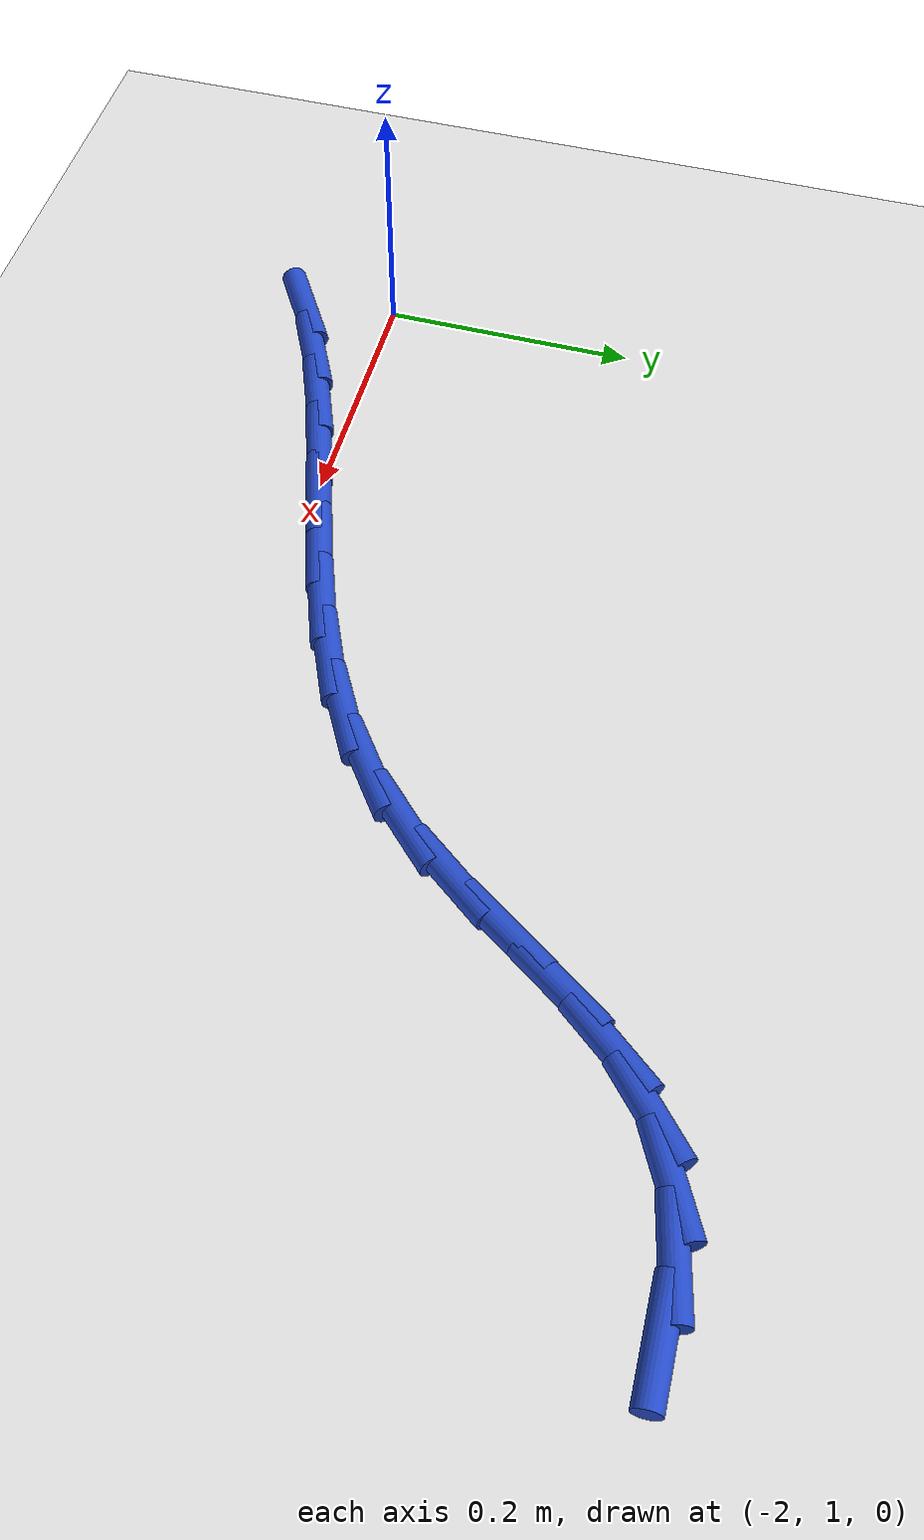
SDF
<sdf version="1.6">
 <world name="default">
  <model name="ground_plane">
   <static>1</static>
   <link name="link">
    <collision name="collision">
     <geometry><plane><normal>0 0 1</normal><size>100 100</size></plane></geometry>
     <surface><friction><ode><mu>100</mu><mu2>50</mu2></ode></friction></surface>
    </collision>
    <visual name="visual">
     <cast_shadows>0</cast_shadows>
     <geometry><plane><normal>0 0 1</normal><size>100 100</size></plane></geometry>
     <material>
      <script><uri>file://media/materials/scripts/gazebo.material</uri><name>Gazebo/WhiteGlow</name></script>
     </material>
    </visual>
   </link>
  </model>
  <model name="line">
   <link name="link_37">
    <pose>-1.228092618453939 1.3848753505350226 0.01 0 1.57 0.02396533607206576</pose>
    <collision name="collision">
     <geometry><cylinder><radius>0.01</radius><length>0.08</length></cylinder></geometry>
    </collision>
    <visual name="visual">
     <material>
      <script><name>Gazebo/Blue</name><uri>file://media/materials/scripts/gazebo.material</uri></script>
     </material>
     <geometry><cylinder><radius>0.01</radius><length>0.08</length></cylinder></geometry>
    </visual>
   </link>
   <link name="link_38">
    <pose>-1.276228534774842 1.3837215362219186 0.01 0 1.57 0.2375019153599429</pose>
    <collision name="collision">
     <geometry><cylinder><radius>0.01</radius><length>0.08</length></cylinder></geometry>
    </collision>
    <visual name="visual">
     <material>
      <script><name>Gazebo/Blue</name><uri>file://media/materials/scripts/gazebo.material</uri></script>
     </material>
     <geometry><cylinder><radius>0.01</radius><length>0.08</length></cylinder></geometry>
    </visual>
   </link>
   <link name="link_39">
    <pose>-1.3207410945033216 1.3729463528803345 0.01 0 1.57 0.49093916707123003</pose>
    <collision name="collision">
     <geometry><cylinder><radius>0.01</radius><length>0.08</length></cylinder></geometry>
    </collision>
    <visual name="visual">
     <material>
      <script><name>Gazebo/Blue</name><uri>file://media/materials/scripts/gazebo.material</uri></script>
     </material>
     <geometry><cylinder><radius>0.01</radius><length>0.08</length></cylinder></geometry>
    </visual>
   </link>
   <link name="link_40">
    <pose>-1.3606171894450843 1.3516287873410493 0.01 0 1.57 0.7406119326496913</pose>
    <collision name="collision">
     <geometry><cylinder><radius>0.01</radius><length>0.08</length></cylinder></geometry>
    </collision>
    <visual name="visual">
     <material>
      <script><name>Gazebo/Blue</name><uri>file://media/materials/scripts/gazebo.material</uri></script>
     </material>
     <geometry><cylinder><radius>0.01</radius><length>0.08</length></cylinder></geometry>
    </visual>
   </link>
   <link name="link_41">
    <pose>-1.3954605451085118 1.3197745636636793 0.01 0 1.57 0.9008215098158752</pose>
    <collision name="collision">
     <geometry><cylinder><radius>0.01</radius><length>0.08</length></cylinder></geometry>
    </collision>
    <visual name="visual">
     <material>
      <script><name>Gazebo/Blue</name><uri>file://media/materials/scripts/gazebo.material</uri></script>
     </material>
     <geometry><cylinder><radius>0.01</radius><length>0.08</length></cylinder></geometry>
    </visual>
   </link>
   <link name="link_42">
    <pose>-1.426775938758928 1.2802455654034435 0.01 0 1.57 0.9755309504757887</pose>
    <collision name="collision">
     <geometry><cylinder><radius>0.01</radius><length>0.08</length></cylinder></geometry>
    </collision>
    <visual name="visual">
     <material>
      <script><name>Gazebo/Blue</name><uri>file://media/materials/scripts/gazebo.material</uri></script>
     </material>
     <geometry><cylinder><radius>0.01</radius><length>0.08</length></cylinder></geometry>
    </visual>
   </link>
   <link name="link_43">
    <pose>-1.456433212555893 1.236452153325807 0.01 0 1.57 0.9811825235593502</pose>
    <collision name="collision">
     <geometry><cylinder><radius>0.01</radius><length>0.08</length></cylinder></geometry>
    </collision>
    <visual name="visual">
     <material>
      <script><name>Gazebo/Blue</name><uri>file://media/materials/scripts/gazebo.material</uri></script>
     </material>
     <geometry><cylinder><radius>0.01</radius><length>0.08</length></cylinder></geometry>
    </visual>
   </link>
   <link name="link_44">
    <pose>-1.486302208658969 1.1918046881962385 0.01 0 1.57 0.921509227882303</pose>
    <collision name="collision">
     <geometry><cylinder><radius>0.01</radius><length>0.08</length></cylinder></geometry>
    </collision>
    <visual name="visual">
     <material>
      <script><name>Gazebo/Blue</name><uri>file://media/materials/scripts/gazebo.material</uri></script>
     </material>
     <geometry><cylinder><radius>0.01</radius><length>0.08</length></cylinder></geometry>
    </visual>
   </link>
   <link name="link_45">
    <pose>-1.5182527692277161 1.1497135307802022 0.01 0 1.57 0.7921929371656502</pose>
    <collision name="collision">
     <geometry><cylinder><radius>0.01</radius><length>0.08</length></cylinder></geometry>
    </collision>
    <visual name="visual">
     <material>
      <script><name>Gazebo/Blue</name><uri>file://media/materials/scripts/gazebo.material</uri></script>
     </material>
     <geometry><cylinder><radius>0.01</radius><length>0.08</length></cylinder></geometry>
    </visual>
   </link>
   <link name="link_46">
    <pose>-1.554058874998976 1.1134174997614488 0.01 0 1.57 0.6398658212087711</pose>
    <collision name="collision">
     <geometry><cylinder><radius>0.01</radius><length>0.08</length></cylinder></geometry>
    </collision>
    <visual name="visual">
     <material>
      <script><name>Gazebo/Blue</name><uri>file://media/materials/scripts/gazebo.material</uri></script>
     </material>
     <geometry><cylinder><radius>0.01</radius><length>0.08</length></cylinder></geometry>
    </visual>
   </link>
   <link name="link_47">
    <pose>-1.594081650379193 1.0836271359282754 0.01 0 1.57 0.512716814159115</pose>
    <collision name="collision">
     <geometry><cylinder><radius>0.01</radius><length>0.08</length></cylinder></geometry>
    </collision>
    <visual name="visual">
     <material>
      <script><name>Gazebo/Blue</name><uri>file://media/materials/scripts/gazebo.material</uri></script>
     </material>
     <geometry><cylinder><radius>0.01</radius><length>0.08</length></cylinder></geometry>
    </visual>
   </link>
   <link name="link_48">
    <pose>-1.6376054998058849 1.0591262114100246 0.01 0 1.57 0.41653196900353706</pose>
    <collision name="collision">
     <geometry><cylinder><radius>0.01</radius><length>0.08</length></cylinder></geometry>
    </collision>
    <visual name="visual">
     <material>
      <script><name>Gazebo/Blue</name><uri>file://media/materials/scripts/gazebo.material</uri></script>
     </material>
     <geometry><cylinder><radius>0.01</radius><length>0.08</length></cylinder></geometry>
    </visual>
   </link>
   <link name="link_49">
    <pose>-1.6838877530583984 1.038650048781536 0.01 0 1.57 0.35156919322046076</pose>
    <collision name="collision">
     <geometry><cylinder><radius>0.01</radius><length>0.08</length></cylinder></geometry>
    </collision>
    <visual name="visual">
     <material>
      <script><name>Gazebo/Blue</name><uri>file://media/materials/scripts/gazebo.material</uri></script>
     </material>
     <geometry><cylinder><radius>0.01</radius><length>0.08</length></cylinder></geometry>
    </visual>
   </link>
   <link name="link_50">
    <pose>-1.7321857399160803 1.020933970617649 0.01 0 1.57 0.3162390852858655</pose>
    <collision name="collision">
     <geometry><cylinder><radius>0.01</radius><length>0.08</length></cylinder></geometry>
    </collision>
    <visual name="visual">
     <material>
      <script><name>Gazebo/Blue</name><uri>file://media/materials/scripts/gazebo.material</uri></script>
     </material>
     <geometry><cylinder><radius>0.01</radius><length>0.08</length></cylinder></geometry>
    </visual>
   </link>
   <link name="link_51">
    <pose>-1.7817567901582767 1.0047132994932044 0.01 0 1.57 0.3089329021948328</pose>
    <collision name="collision">
     <geometry><cylinder><radius>0.01</radius><length>0.08</length></cylinder></geometry>
    </collision>
    <visual name="visual">
     <material>
      <script><name>Gazebo/Blue</name><uri>file://media/materials/scripts/gazebo.material</uri></script>
     </material>
     <geometry><cylinder><radius>0.01</radius><length>0.08</length></cylinder></geometry>
    </visual>
   </link>
   <link name="link_52">
    <pose>-1.831858233564334 0.9887233579830418 0.01 0 1.57 0.3288443928358384</pose>
    <collision name="collision">
     <geometry><cylinder><radius>0.01</radius><length>0.08</length></cylinder></geometry>
    </collision>
    <visual name="visual">
     <material>
      <script><name>Gazebo/Blue</name><uri>file://media/materials/scripts/gazebo.material</uri></script>
     </material>
     <geometry><cylinder><radius>0.01</radius><length>0.08</length></cylinder></geometry>
    </visual>
   </link>
   <link name="link_53">
    <pose>-1.8817473999135994 0.9716994686620011 0.01 0 1.57 0.37607367094317373</pose>
    <collision name="collision">
     <geometry><cylinder><radius>0.01</radius><length>0.08</length></cylinder></geometry>
    </collision>
    <visual name="visual">
     <material>
      <script><name>Gazebo/Blue</name><uri>file://media/materials/scripts/gazebo.material</uri></script>
     </material>
     <geometry><cylinder><radius>0.01</radius><length>0.08</length></cylinder></geometry>
    </visual>
   </link>
   <link name="link_54">
    <pose>-1.9306816189854195 0.9523769541049222 0.01 0 1.57 0.4511654746971185</pose>
    <collision name="collision">
     <geometry><cylinder><radius>0.01</radius><length>0.08</length></cylinder></geometry>
    </collision>
    <visual name="visual">
     <material>
      <script><name>Gazebo/Blue</name><uri>file://media/materials/scripts/gazebo.material</uri></script>
     </material>
     <geometry><cylinder><radius>0.01</radius><length>0.08</length></cylinder></geometry>
    </visual>
   </link>
   <link name="link_55">
    <pose>-1.97791822055914 0.9294911368866452 0.01 0 1.57 0.55095496396628</pose>
    <collision name="collision">
     <geometry><cylinder><radius>0.01</radius><length>0.08</length></cylinder></geometry>
    </collision>
    <visual name="visual">
     <material>
      <script><name>Gazebo/Blue</name><uri>file://media/materials/scripts/gazebo.material</uri></script>
     </material>
     <geometry><cylinder><radius>0.01</radius><length>0.08</length></cylinder></geometry>
    </visual>
   </link>
  </model>
 </world>
</sdf>
